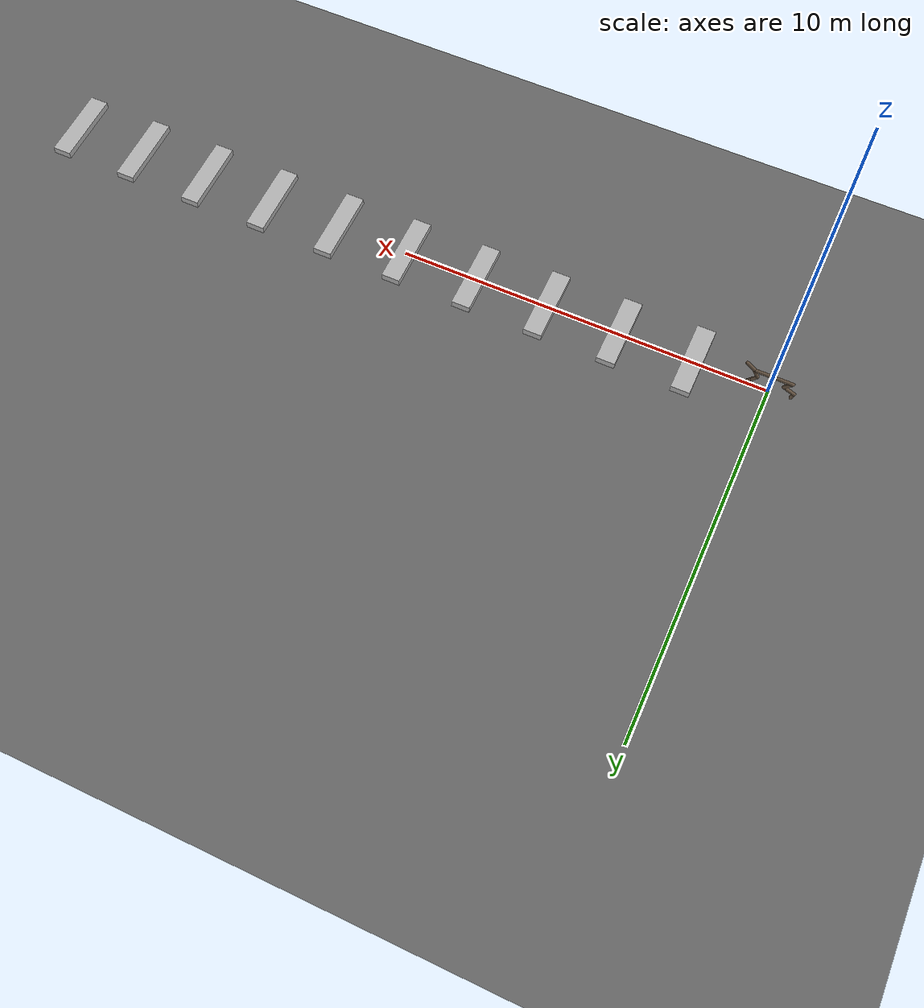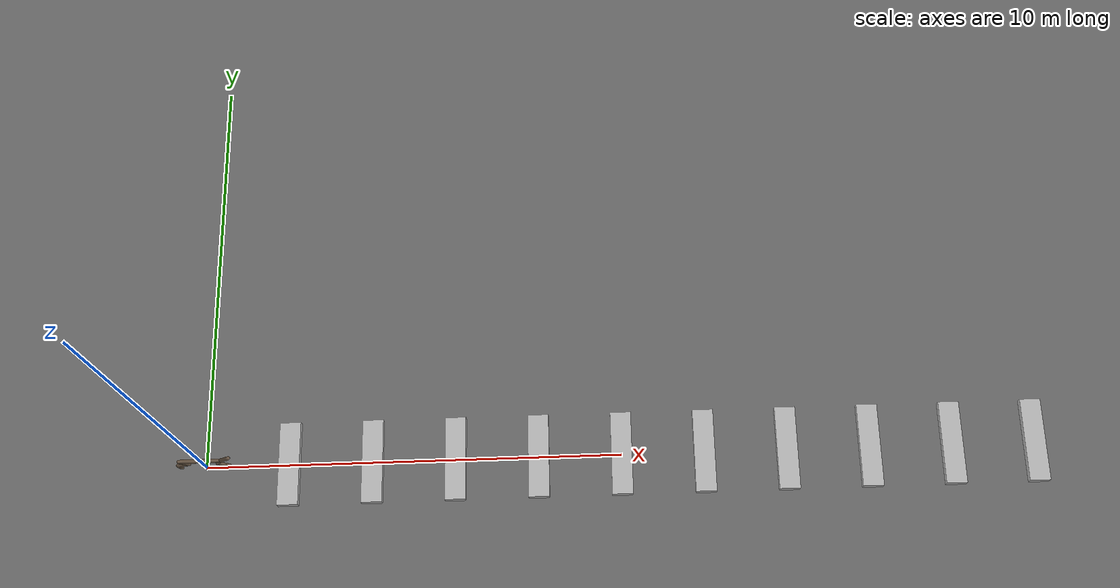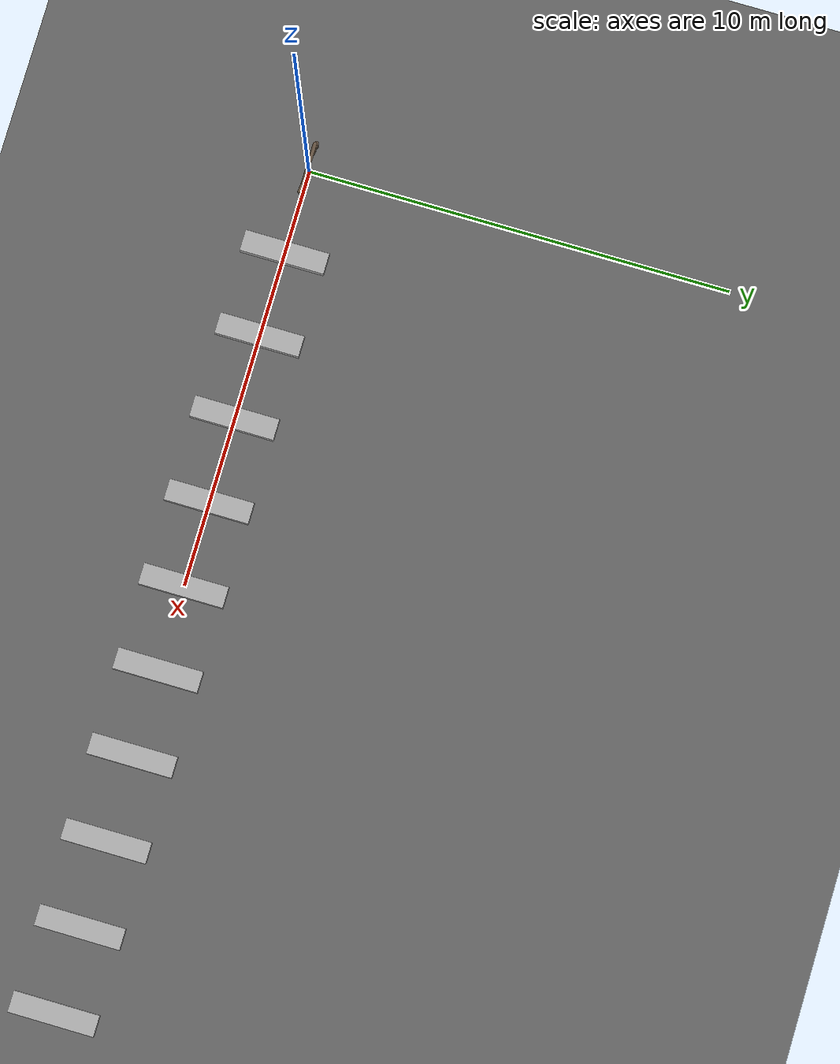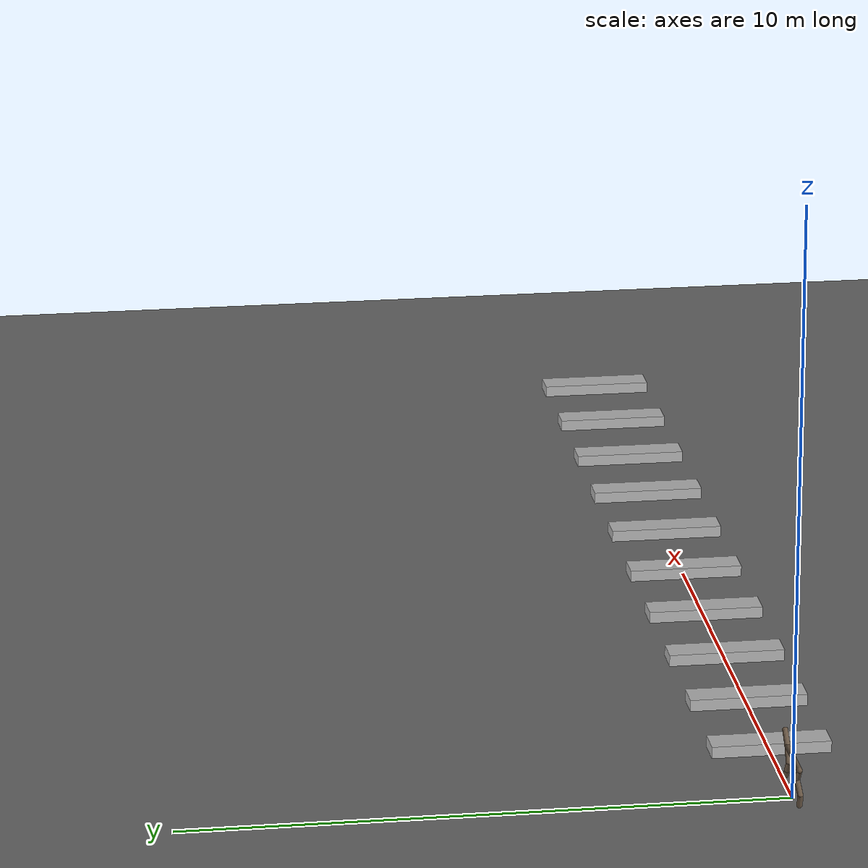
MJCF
<mujoco model="cheetah">
  <compiler angle="radian" coordinate="local" inertiafromgeom="true" settotalmass="14" />
  <default>
    <joint armature=".1" damping=".01" limited="true" solimplimit="0 .8 .03" solreflimit=".02 1" stiffness="8" />
    <geom conaffinity="0" condim="3" contype="0" friction=".4 .1 .1" solimp="0.0 0.8 0.01" solref="0.02 1" rgba="0.4 0.33 0.26 1.0" />
    <motor ctrllimited="true" ctrlrange="-1 1" />
  </default>
  <size nstack="300000" nuser_geom="1" />
  <option gravity="0 0 -9.81" timestep="0.01" iterations="4" />
  <custom>

    <numeric data="10000" name="constraint_limit_stiffness" />
    <numeric data="20000" name="constraint_stiffness" />
    <numeric data="10 2 2 2 10 2 1" name="constraint_ang_damping" />
    <numeric data="10" name="constraint_vel_damping" />
    <numeric data="-0.01" name="ang_damping" />
    <numeric data="0.2" name="baumgarte_erp" />
    <numeric data="0.3" name="spring_mass_scale" />
    <numeric data="0.8" name="spring_inertia_scale" />
    <numeric data="50" name="solver_maxls" />
  </custom>
  <asset>
    <texture builtin="gradient" height="100" rgb1="1 1 1" rgb2="0 0 0" type="skybox" width="100" />
    <texture builtin="flat" height="1278" mark="cross" markrgb="1 1 1" name="texgeom" random="0.01" rgb1="0.8 0.6 0.4" rgb2="0.8 0.6 0.4" type="cube" width="127" />
    <texture builtin="checker" height="100" name="texplane" rgb1="0 0 0" rgb2="0.8 0.8 0.8" type="2d" width="100" />
    <material name="MatPlane" reflectance="0.5" shininess="1" specular="1" texrepeat="60 60" texture="texplane" />
    <material name="geom" texture="texgeom" texuniform="true" />
  </asset>
  <worldbody>
    <light cutoff="100" diffuse="1 1 1" dir="-0 0 -1.3" directional="true" exponent="1" pos="0 0 1.3" specular=".1 .1 .1" />
    <geom conaffinity="1" condim="3" material="MatPlane" name="floor" pos="0 0 0" size="40 40 40" type="plane" rgba="0.5 0.5 0.5 1.0" />
    <body name="torso" pos="0 0 .7">
      <camera name="track" mode="trackcom" pos="0 -3 0.3" xyaxes="1 0 0 0 0 1" />
      <joint armature="0" axis="1 0 0" damping="0" limited="false" name="rootx" pos="0 0 0" stiffness="0" type="slide" />
      <joint armature="0" axis="0 0 1" damping="0" limited="false" name="rootz" pos="0 0 0" stiffness="0" type="slide" />
      <joint armature="0" axis="0 1 0" damping="0" limited="false" name="rooty" pos="0 0 0" stiffness="0" type="hinge" />
      <geom fromto="-.5 0 0 .5 0 0" name="torso" size="0.046" type="capsule" />
      <geom contype="1" axisangle="0 1 0 .87" name="head" pos=".6 0 .1" size="0.046 .15" type="capsule" />

      <body name="bthigh" pos="-.5 0 0">
        <joint axis="0 1 0" damping="6" name="bthigh" pos="0 0 0" range="-.52 1.05" stiffness="240" type="hinge" />
        <geom contype="1" axisangle="0 1 0 -3.8" name="bthigh" pos=".1 0 -.13" size="0.046 .145" type="capsule" />
        <body name="bshin" pos=".16 0 -.25">
          <joint axis="0 1 0" damping="4.5" name="bshin" pos="0 0 0" range="-.785 .785" stiffness="180" type="hinge" />
          <geom axisangle="0 1 0 -2.03" name="bshin" pos="-.14 0 -.07" size="0.046 .15" type="capsule" />
          <body name="bfoot" pos="-.28 0 -.14">
            <joint axis="0 1 0" damping="3" name="bfoot" pos="0 0 0" range="-.4 .785" stiffness="120" type="hinge" />
            <geom contype="1" axisangle="0 1 0 -.27" name="bfoot" pos=".03 0 -.097" size="0.046 .094" type="capsule" />
          </body>
        </body>
      </body>
      <body name="fthigh" pos=".5 0 0">
        <joint axis="0 1 0" damping="4.5" name="fthigh" pos="0 0 0" range="-1 .7" stiffness="180" type="hinge" />
        <geom contype="1" axisangle="0 1 0 .52" name="fthigh" pos="-.07 0 -.12" size="0.046 .133" type="capsule" />
        <body name="fshin" pos="-.14 0 -.24">
          <joint axis="0 1 0" damping="3" name="fshin" pos="0 0 0" range="-1.2 .87" stiffness="120" type="hinge" />
          <geom axisangle="0 1 0 -.6" name="fshin" pos=".065 0 -.09" size="0.046 .106" type="capsule" />
          <body name="ffoot" pos=".13 0 -.18">
            <joint axis="0 1 0" damping="1.5" name="ffoot" pos="0 0 0" range="-.5 .5" stiffness="60" type="hinge" />
            <geom contype="1" axisangle="0 1 0 -.6" name="ffoot" pos=".045 0 -.07" size="0.046 .07" type="capsule" />
          </body>
        </body>
      </body>
    </body>
  <body name="obstacle_0" pos="2.0 0 0.1"><geom type="box" size="0.25 1.0 0.1" rgba="0.7 0.7 0.7 1" mass="0" contype="1" conaffinity="1" /></body><body name="obstacle_1" pos="4.0 0 0.1"><geom type="box" size="0.25 1.0 0.1" rgba="0.7 0.7 0.7 1" mass="0" contype="1" conaffinity="1" /></body><body name="obstacle_2" pos="6.0 0 0.1"><geom type="box" size="0.25 1.0 0.1" rgba="0.7 0.7 0.7 1" mass="0" contype="1" conaffinity="1" /></body><body name="obstacle_3" pos="8.0 0 0.1"><geom type="box" size="0.25 1.0 0.1" rgba="0.7 0.7 0.7 1" mass="0" contype="1" conaffinity="1" /></body><body name="obstacle_4" pos="10.0 0 0.1"><geom type="box" size="0.25 1.0 0.1" rgba="0.7 0.7 0.7 1" mass="0" contype="1" conaffinity="1" /></body><body name="obstacle_5" pos="12.0 0 0.1"><geom type="box" size="0.25 1.0 0.1" rgba="0.7 0.7 0.7 1" mass="0" contype="1" conaffinity="1" /></body><body name="obstacle_6" pos="14.0 0 0.1"><geom type="box" size="0.25 1.0 0.1" rgba="0.7 0.7 0.7 1" mass="0" contype="1" conaffinity="1" /></body><body name="obstacle_7" pos="16.0 0 0.1"><geom type="box" size="0.25 1.0 0.1" rgba="0.7 0.7 0.7 1" mass="0" contype="1" conaffinity="1" /></body><body name="obstacle_8" pos="18.0 0 0.1"><geom type="box" size="0.25 1.0 0.1" rgba="0.7 0.7 0.7 1" mass="0" contype="1" conaffinity="1" /></body><body name="obstacle_9" pos="20.0 0 0.1"><geom type="box" size="0.25 1.0 0.1" rgba="0.7 0.7 0.7 1" mass="0" contype="1" conaffinity="1" /></body></worldbody>
  <actuator>
    <motor gear="120" joint="bthigh" name="bthigh" />
    <motor gear="90" joint="bshin" name="bshin" />
    <motor gear="60" joint="bfoot" name="bfoot" />
    <motor gear="120" joint="fthigh" name="fthigh" />
    <motor gear="60" joint="fshin" name="fshin" />
    <motor gear="30" joint="ffoot" name="ffoot" />
  </actuator>
</mujoco>
